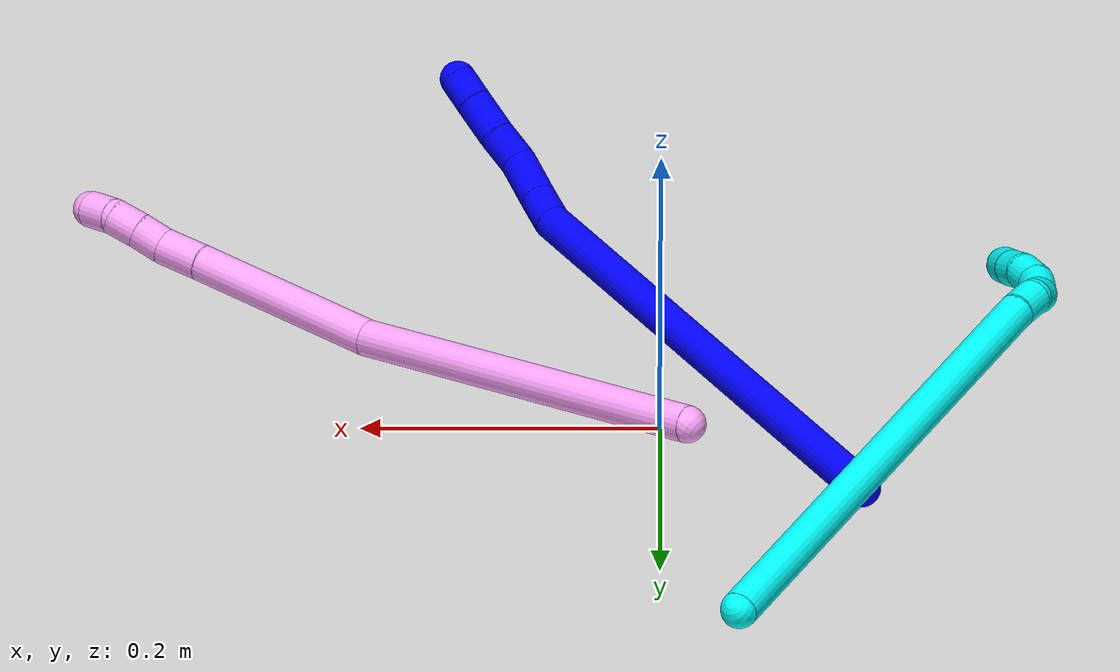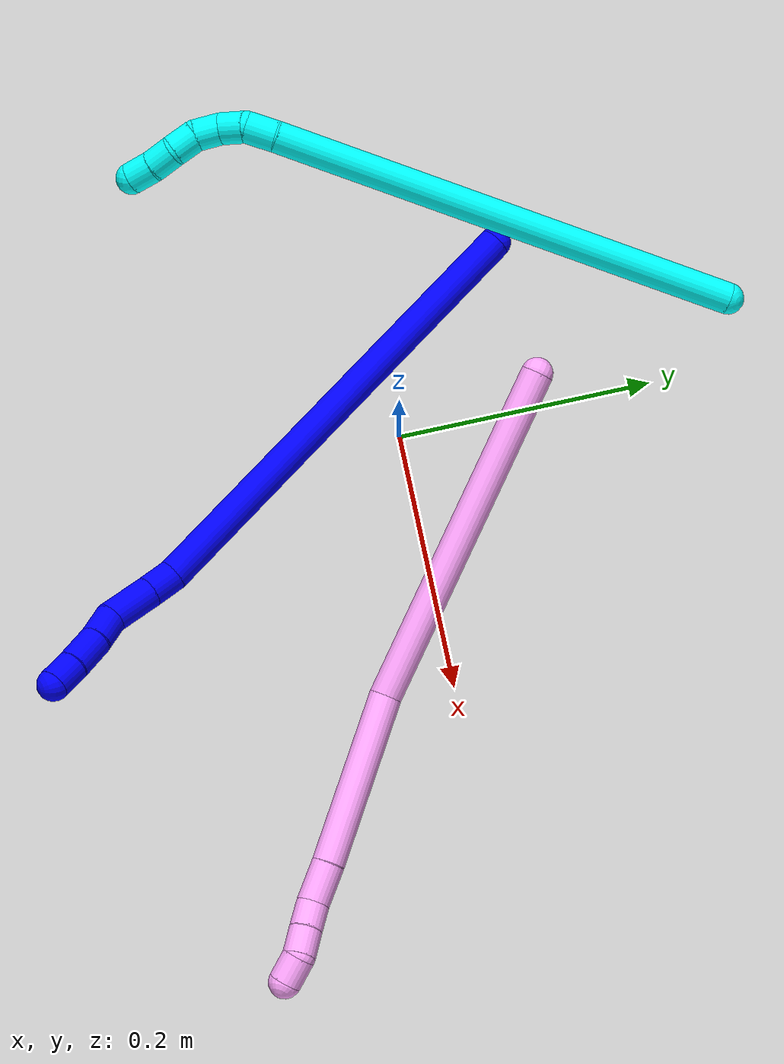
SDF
<sdf version="1.7">
 <world name="default">
  <model name="1">
   <static>0</static>
   <link name="1">
    <collision name="collision-cylinder-e_1_1_4">
     <pose>0.040502 -0.079061 0.159186 0.460972 0.224049 0.052783</pose>
     <geometry><cylinder><radius>0.0125</radius><length>0.364589</length></cylinder></geometry>
     <surface>
      <friction><ode><mu>1.16</mu><mu2>1.16</mu2><slip1>0</slip1><slip2>0</slip2></ode></friction>
      <contact><ode><kp>1e+06</kp><kd>1</kd><max_vel>0</max_vel><min_depth>0.001</min_depth></ode></contact>
     </surface>
    </collision>
    <visual name="visual-cylinder-e_1_1_4">
     <pose>0.040502 -0.079061 0.159186 0.460972 0.224049 0.052783</pose>
     <geometry><cylinder><radius>0.0125</radius><length>0.364589</length></cylinder></geometry>
     <material><ambient>0 0 1 1</ambient></material>
    </visual>
    <collision name="collision-cylinder-e_2_4_5">
     <pose>0.083281 -0.160276 0.329513 0.190978 0.198021 0.019028</pose>
     <geometry><cylinder><radius>0.0125</radius><length>0.023149</length></cylinder></geometry>
     <surface>
      <friction><ode><mu>1.16</mu><mu2>1.16</mu2><slip1>0</slip1><slip2>0</slip2></ode></friction>
      <contact><ode><kp>1e+06</kp><kd>1</kd><max_vel>0</max_vel><min_depth>0.001</min_depth></ode></contact>
     </surface>
    </collision>
    <visual name="visual-cylinder-e_2_4_5">
     <pose>0.083281 -0.160276 0.329513 0.190978 0.198021 0.019028</pose>
     <geometry><cylinder><radius>0.0125</radius><length>0.023149</length></cylinder></geometry>
     <material><ambient>0 0 1 1</ambient></material>
    </visual>
    <collision name="collision-cylinder-e_3_5_6">
     <pose>0.088976 -0.165544 0.358415 0.173533 0.187343 0.016344</pose>
     <geometry><cylinder><radius>0.0125</radius><length>0.036703</length></cylinder></geometry>
     <surface>
      <friction><ode><mu>1.16</mu><mu2>1.16</mu2><slip1>0</slip1><slip2>0</slip2></ode></friction>
      <contact><ode><kp>1e+06</kp><kd>1</kd><max_vel>0</max_vel><min_depth>0.001</min_depth></ode></contact>
     </surface>
    </collision>
    <visual name="visual-cylinder-e_3_5_6">
     <pose>0.088976 -0.165544 0.358415 0.173533 0.187343 0.016344</pose>
     <geometry><cylinder><radius>0.0125</radius><length>0.036703</length></cylinder></geometry>
     <material><ambient>0 0 1 1</ambient></material>
    </visual>
    <collision name="collision-cylinder-e_4_6_7">
     <pose>0.099693 -0.169409 0.386214 0.07474 0.627311 0.024253</pose>
     <geometry><cylinder><radius>0.0125</radius><length>0.024872</length></cylinder></geometry>
     <surface>
      <friction><ode><mu>1.16</mu><mu2>1.16</mu2><slip1>0</slip1><slip2>0</slip2></ode></friction>
      <contact><ode><kp>1e+06</kp><kd>1</kd><max_vel>0</max_vel><min_depth>0.001</min_depth></ode></contact>
     </surface>
    </collision>
    <visual name="visual-cylinder-e_4_6_7">
     <pose>0.099693 -0.169409 0.386214 0.07474 0.627311 0.024253</pose>
     <geometry><cylinder><radius>0.0125</radius><length>0.024872</length></cylinder></geometry>
     <material><ambient>0 0 1 1</ambient></material>
    </visual>
    <collision name="collision-cylinder-e_5_7_8">
     <pose>0.113809 -0.171223 0.408728 0.085017 0.498605 0.021657</pose>
     <geometry><cylinder><radius>0.0125</radius><length>0.028508</length></cylinder></geometry>
     <surface>
      <friction><ode><mu>1.16</mu><mu2>1.16</mu2><slip1>0</slip1><slip2>0</slip2></ode></friction>
      <contact><ode><kp>1e+06</kp><kd>1</kd><max_vel>0</max_vel><min_depth>0.001</min_depth></ode></contact>
     </surface>
    </collision>
    <visual name="visual-cylinder-e_5_7_8">
     <pose>0.113809 -0.171223 0.408728 0.085017 0.498605 0.021657</pose>
     <geometry><cylinder><radius>0.0125</radius><length>0.028508</length></cylinder></geometry>
     <material><ambient>0 0 1 1</ambient></material>
    </visual>
    <collision name="collision-cylinder-e_6_8_2">
     <pose>0.125166 -0.173503 0.431246 0.120536 0.421769 0.025833</pose>
     <geometry><cylinder><radius>0.0125</radius><length>0.02218</length></cylinder></geometry>
     <surface>
      <friction><ode><mu>1.16</mu><mu2>1.16</mu2><slip1>0</slip1><slip2>0</slip2></ode></friction>
      <contact><ode><kp>1e+06</kp><kd>1</kd><max_vel>0</max_vel><min_depth>0.001</min_depth></ode></contact>
     </surface>
    </collision>
    <visual name="visual-cylinder-e_6_8_2">
     <pose>0.125166 -0.173503 0.431246 0.120536 0.421769 0.025833</pose>
     <geometry><cylinder><radius>0.0125</radius><length>0.02218</length></cylinder></geometry>
     <material><ambient>0 0 1 1</ambient></material>
    </visual>
    <collision name="collision-sphere-2">
     <pose>0.129706 -0.17472 0.441291 0 -0 0</pose>
     <geometry><sphere><radius>0.0125</radius></sphere></geometry>
     <surface>
      <friction><ode><mu>1.16</mu><mu2>1.16</mu2><slip1>0</slip1><slip2>0</slip2></ode></friction>
      <contact><ode><kp>1e+06</kp><kd>1</kd><max_vel>0</max_vel><min_depth>0.001</min_depth></ode></contact>
     </surface>
    </collision>
    <visual name="visual-sphere-2">
     <pose>0.129706 -0.17472 0.441291 0 -0 0</pose>
     <geometry><sphere><radius>0.0125</radius></sphere></geometry>
     <material><ambient>0 0 1 1</ambient></material>
    </visual>
    <collision name="collision-sphere-4">
     <pose>0.081004 -0.158122 0.318372 0 -0 0</pose>
     <geometry><sphere><radius>0.0125</radius></sphere></geometry>
     <surface>
      <friction><ode><mu>1.16</mu><mu2>1.16</mu2><slip1>0</slip1><slip2>0</slip2></ode></friction>
      <contact><ode><kp>1e+06</kp><kd>1</kd><max_vel>0</max_vel><min_depth>0.001</min_depth></ode></contact>
     </surface>
    </collision>
    <visual name="visual-sphere-4">
     <pose>0.081004 -0.158122 0.318372 0 -0 0</pose>
     <geometry><sphere><radius>0.0125</radius></sphere></geometry>
     <material><ambient>0 0 1 1</ambient></material>
    </visual>
    <collision name="collision-sphere-1">
     <geometry><sphere><radius>0.0125</radius></sphere></geometry>
     <surface>
      <friction><ode><mu>1.16</mu><mu2>1.16</mu2><slip1>0</slip1><slip2>0</slip2></ode></friction>
      <contact><ode><kp>1e+06</kp><kd>1</kd><max_vel>0</max_vel><min_depth>0.001</min_depth></ode></contact>
     </surface>
    </collision>
    <visual name="visual-sphere-1">
     <geometry><sphere><radius>0.0125</radius></sphere></geometry>
     <material><ambient>0 0 1 1</ambient></material>
    </visual>
    <collision name="collision-sphere-8">
     <pose>0.120626 -0.172286 0.421202 0 -0 0</pose>
     <geometry><sphere><radius>0.0125</radius></sphere></geometry>
     <surface>
      <friction><ode><mu>1.16</mu><mu2>1.16</mu2><slip1>0</slip1><slip2>0</slip2></ode></friction>
      <contact><ode><kp>1e+06</kp><kd>1</kd><max_vel>0</max_vel><min_depth>0.001</min_depth></ode></contact>
     </surface>
    </collision>
    <visual name="visual-sphere-8">
     <pose>0.120626 -0.172286 0.421202 0 -0 0</pose>
     <geometry><sphere><radius>0.0125</radius></sphere></geometry>
     <material><ambient>0 0 1 1</ambient></material>
    </visual>
    <collision name="collision-sphere-5">
     <pose>0.085558 -0.16243 0.340655 0 -0 0</pose>
     <geometry><sphere><radius>0.0125</radius></sphere></geometry>
     <surface>
      <friction><ode><mu>1.16</mu><mu2>1.16</mu2><slip1>0</slip1><slip2>0</slip2></ode></friction>
      <contact><ode><kp>1e+06</kp><kd>1</kd><max_vel>0</max_vel><min_depth>0.001</min_depth></ode></contact>
     </surface>
    </collision>
    <visual name="visual-sphere-5">
     <pose>0.085558 -0.16243 0.340655 0 -0 0</pose>
     <geometry><sphere><radius>0.0125</radius></sphere></geometry>
     <material><ambient>0 0 1 1</ambient></material>
    </visual>
    <collision name="collision-sphere-6">
     <pose>0.092394 -0.168657 0.376174 0 -0 0</pose>
     <geometry><sphere><radius>0.0125</radius></sphere></geometry>
     <surface>
      <friction><ode><mu>1.16</mu><mu2>1.16</mu2><slip1>0</slip1><slip2>0</slip2></ode></friction>
      <contact><ode><kp>1e+06</kp><kd>1</kd><max_vel>0</max_vel><min_depth>0.001</min_depth></ode></contact>
     </surface>
    </collision>
    <visual name="visual-sphere-6">
     <pose>0.092394 -0.168657 0.376174 0 -0 0</pose>
     <geometry><sphere><radius>0.0125</radius></sphere></geometry>
     <material><ambient>0 0 1 1</ambient></material>
    </visual>
    <collision name="collision-sphere-7">
     <pose>0.106993 -0.17016 0.396254 0 -0 0</pose>
     <geometry><sphere><radius>0.0125</radius></sphere></geometry>
     <surface>
      <friction><ode><mu>1.16</mu><mu2>1.16</mu2><slip1>0</slip1><slip2>0</slip2></ode></friction>
      <contact><ode><kp>1e+06</kp><kd>1</kd><max_vel>0</max_vel><min_depth>0.001</min_depth></ode></contact>
     </surface>
    </collision>
    <visual name="visual-sphere-7">
     <pose>0.106993 -0.17016 0.396254 0 -0 0</pose>
     <geometry><sphere><radius>0.0125</radius></sphere></geometry>
     <material><ambient>0 0 1 1</ambient></material>
    </visual>
    <inertial>
     <pose>0.056921 -0.103108 0.219286 0 -0 0</pose>
     <mass>0.5</mass>
     <inertia>
      <ixx>0.004178</ixx>
      <ixy>0</ixy>
      <ixz>0</ixz>
      <iyy>0.003855</iyy>
      <iyz>0</iyz>
      <izz>0.000889</izz>
     </inertia>
    </inertial>
   </link>
   <pose>-0.132441 0.105231 0.011491 1.08247 -0.546247 0.43082</pose>
  </model>
  <model name="3">
   <static>0</static>
   <link name="3">
    <collision name="collision-cylinder-e_1_1_4">
     <pose>-0.008196 -0.14424 0.118424 0.88337 -0.043887 -0.020754</pose>
     <geometry><cylinder><radius>0.0125</radius><length>0.373613</length></cylinder></geometry>
     <surface>
      <friction><ode><mu>1.16</mu><mu2>1.16</mu2><slip1>0</slip1><slip2>0</slip2></ode></friction>
      <contact><ode><kp>1e+06</kp><kd>1</kd><max_vel>0</max_vel><min_depth>0.001</min_depth></ode></contact>
     </surface>
    </collision>
    <visual name="visual-cylinder-e_1_1_4">
     <pose>-0.008196 -0.14424 0.118424 0.88337 -0.043887 -0.020754</pose>
     <geometry><cylinder><radius>0.0125</radius><length>0.373613</length></cylinder></geometry>
     <material><ambient>0.003922 1 0.996078 1</ambient></material>
    </visual>
    <collision name="collision-cylinder-e_2_4_5">
     <pose>-0.017089 -0.296597 0.245553 0.750422 -0.058507 -0.02305</pose>
     <geometry><cylinder><radius>0.0125</radius><length>0.023844</length></cylinder></geometry>
     <surface>
      <friction><ode><mu>1.16</mu><mu2>1.16</mu2><slip1>0</slip1><slip2>0</slip2></ode></friction>
      <contact><ode><kp>1e+06</kp><kd>1</kd><max_vel>0</max_vel><min_depth>0.001</min_depth></ode></contact>
     </surface>
    </collision>
    <visual name="visual-cylinder-e_2_4_5">
     <pose>-0.017089 -0.296597 0.245553 0.750422 -0.058507 -0.02305</pose>
     <geometry><cylinder><radius>0.0125</radius><length>0.023844</length></cylinder></geometry>
     <material><ambient>0.003922 1 0.996078 1</ambient></material>
    </visual>
    <collision name="collision-cylinder-e_3_5_6">
     <pose>-0.021494 -0.308283 0.263592 0.365245 -0.35533 -0.066297</pose>
     <geometry><cylinder><radius>0.0125</radius><length>0.021318</length></cylinder></geometry>
     <surface>
      <friction><ode><mu>1.16</mu><mu2>1.16</mu2><slip1>0</slip1><slip2>0</slip2></ode></friction>
      <contact><ode><kp>1e+06</kp><kd>1</kd><max_vel>0</max_vel><min_depth>0.001</min_depth></ode></contact>
     </surface>
    </collision>
    <visual name="visual-cylinder-e_3_5_6">
     <pose>-0.021494 -0.308283 0.263592 0.365245 -0.35533 -0.066297</pose>
     <geometry><cylinder><radius>0.0125</radius><length>0.021318</length></cylinder></geometry>
     <material><ambient>0.003922 1 0.996078 1</ambient></material>
    </visual>
    <collision name="collision-cylinder-e_4_6_7">
     <pose>-0.031383 -0.317635 0.278947 0.765202 -0.637286 -0.263968</pose>
     <geometry><cylinder><radius>0.0125</radius><length>0.020775</length></cylinder></geometry>
     <surface>
      <friction><ode><mu>1.16</mu><mu2>1.16</mu2><slip1>0</slip1><slip2>0</slip2></ode></friction>
      <contact><ode><kp>1e+06</kp><kd>1</kd><max_vel>0</max_vel><min_depth>0.001</min_depth></ode></contact>
     </surface>
    </collision>
    <visual name="visual-cylinder-e_4_6_7">
     <pose>-0.031383 -0.317635 0.278947 0.765202 -0.637286 -0.263968</pose>
     <geometry><cylinder><radius>0.0125</radius><length>0.020775</length></cylinder></geometry>
     <material><ambient>0.003922 1 0.996078 1</ambient></material>
    </visual>
    <collision name="collision-cylinder-e_5_7_8">
     <pose>-0.046064 -0.327265 0.288944 0.768923 -0.993874 -0.432003</pose>
     <geometry><cylinder><radius>0.0125</radius><length>0.020284</length></cylinder></geometry>
     <surface>
      <friction><ode><mu>1.16</mu><mu2>1.16</mu2><slip1>0</slip1><slip2>0</slip2></ode></friction>
      <contact><ode><kp>1e+06</kp><kd>1</kd><max_vel>0</max_vel><min_depth>0.001</min_depth></ode></contact>
     </surface>
    </collision>
    <visual name="visual-cylinder-e_5_7_8">
     <pose>-0.046064 -0.327265 0.288944 0.768923 -0.993874 -0.432003</pose>
     <geometry><cylinder><radius>0.0125</radius><length>0.020284</length></cylinder></geometry>
     <material><ambient>0.003922 1 0.996078 1</ambient></material>
    </visual>
    <collision name="collision-cylinder-e_6_8_9">
     <pose>-0.062576 -0.332916 0.29876 0.299678 -0.918974 -0.149127</pose>
     <geometry><cylinder><radius>0.0125</radius><length>0.020154</length></cylinder></geometry>
     <surface>
      <friction><ode><mu>1.16</mu><mu2>1.16</mu2><slip1>0</slip1><slip2>0</slip2></ode></friction>
      <contact><ode><kp>1e+06</kp><kd>1</kd><max_vel>0</max_vel><min_depth>0.001</min_depth></ode></contact>
     </surface>
    </collision>
    <visual name="visual-cylinder-e_6_8_9">
     <pose>-0.062576 -0.332916 0.29876 0.299678 -0.918974 -0.149127</pose>
     <geometry><cylinder><radius>0.0125</radius><length>0.020154</length></cylinder></geometry>
     <material><ambient>0.003922 1 0.996078 1</ambient></material>
    </visual>
    <collision name="collision-cylinder-e_7_9_2">
     <pose>-0.077722 -0.337011 0.311231 0.33268 -0.793963 -0.140542</pose>
     <geometry><cylinder><radius>0.0125</radius><length>0.020012</length></cylinder></geometry>
     <surface>
      <friction><ode><mu>1.16</mu><mu2>1.16</mu2><slip1>0</slip1><slip2>0</slip2></ode></friction>
      <contact><ode><kp>1e+06</kp><kd>1</kd><max_vel>0</max_vel><min_depth>0.001</min_depth></ode></contact>
     </surface>
    </collision>
    <visual name="visual-cylinder-e_7_9_2">
     <pose>-0.077722 -0.337011 0.311231 0.33268 -0.793963 -0.140542</pose>
     <geometry><cylinder><radius>0.0125</radius><length>0.020012</length></cylinder></geometry>
     <material><ambient>0.003922 1 0.996078 1</ambient></material>
    </visual>
    <collision name="collision-sphere-2">
     <pose>-0.084858 -0.339302 0.31786 0 -0 0</pose>
     <geometry><sphere><radius>0.0125</radius></sphere></geometry>
     <surface>
      <friction><ode><mu>1.16</mu><mu2>1.16</mu2><slip1>0</slip1><slip2>0</slip2></ode></friction>
      <contact><ode><kp>1e+06</kp><kd>1</kd><max_vel>0</max_vel><min_depth>0.001</min_depth></ode></contact>
     </surface>
    </collision>
    <visual name="visual-sphere-2">
     <pose>-0.084858 -0.339302 0.31786 0 -0 0</pose>
     <geometry><sphere><radius>0.0125</radius></sphere></geometry>
     <material><ambient>0.003922 1 0.996078 1</ambient></material>
    </visual>
    <collision name="collision-sphere-9">
     <pose>-0.070587 -0.334721 0.304601 0 -0 0</pose>
     <geometry><sphere><radius>0.0125</radius></sphere></geometry>
     <surface>
      <friction><ode><mu>1.16</mu><mu2>1.16</mu2><slip1>0</slip1><slip2>0</slip2></ode></friction>
      <contact><ode><kp>1e+06</kp><kd>1</kd><max_vel>0</max_vel><min_depth>0.001</min_depth></ode></contact>
     </surface>
    </collision>
    <visual name="visual-sphere-9">
     <pose>-0.070587 -0.334721 0.304601 0 -0 0</pose>
     <geometry><sphere><radius>0.0125</radius></sphere></geometry>
     <material><ambient>0.003922 1 0.996078 1</ambient></material>
    </visual>
    <collision name="collision-sphere-4">
     <pose>-0.016392 -0.288481 0.236848 0 -0 0</pose>
     <geometry><sphere><radius>0.0125</radius></sphere></geometry>
     <surface>
      <friction><ode><mu>1.16</mu><mu2>1.16</mu2><slip1>0</slip1><slip2>0</slip2></ode></friction>
      <contact><ode><kp>1e+06</kp><kd>1</kd><max_vel>0</max_vel><min_depth>0.001</min_depth></ode></contact>
     </surface>
    </collision>
    <visual name="visual-sphere-4">
     <pose>-0.016392 -0.288481 0.236848 0 -0 0</pose>
     <geometry><sphere><radius>0.0125</radius></sphere></geometry>
     <material><ambient>0.003922 1 0.996078 1</ambient></material>
    </visual>
    <collision name="collision-sphere-1">
     <geometry><sphere><radius>0.0125</radius></sphere></geometry>
     <surface>
      <friction><ode><mu>1.16</mu><mu2>1.16</mu2><slip1>0</slip1><slip2>0</slip2></ode></friction>
      <contact><ode><kp>1e+06</kp><kd>1</kd><max_vel>0</max_vel><min_depth>0.001</min_depth></ode></contact>
     </surface>
    </collision>
    <visual name="visual-sphere-1">
     <geometry><sphere><radius>0.0125</radius></sphere></geometry>
     <material><ambient>0.003922 1 0.996078 1</ambient></material>
    </visual>
    <collision name="collision-sphere-8">
     <pose>-0.054565 -0.331111 0.29292 0 -0 0</pose>
     <geometry><sphere><radius>0.0125</radius></sphere></geometry>
     <surface>
      <friction><ode><mu>1.16</mu><mu2>1.16</mu2><slip1>0</slip1><slip2>0</slip2></ode></friction>
      <contact><ode><kp>1e+06</kp><kd>1</kd><max_vel>0</max_vel><min_depth>0.001</min_depth></ode></contact>
     </surface>
    </collision>
    <visual name="visual-sphere-8">
     <pose>-0.054565 -0.331111 0.29292 0 -0 0</pose>
     <geometry><sphere><radius>0.0125</radius></sphere></geometry>
     <material><ambient>0.003922 1 0.996078 1</ambient></material>
    </visual>
    <collision name="collision-sphere-5">
     <pose>-0.017786 -0.304713 0.254258 0 -0 0</pose>
     <geometry><sphere><radius>0.0125</radius></sphere></geometry>
     <surface>
      <friction><ode><mu>1.16</mu><mu2>1.16</mu2><slip1>0</slip1><slip2>0</slip2></ode></friction>
      <contact><ode><kp>1e+06</kp><kd>1</kd><max_vel>0</max_vel><min_depth>0.001</min_depth></ode></contact>
     </surface>
    </collision>
    <visual name="visual-sphere-5">
     <pose>-0.017786 -0.304713 0.254258 0 -0 0</pose>
     <geometry><sphere><radius>0.0125</radius></sphere></geometry>
     <material><ambient>0.003922 1 0.996078 1</ambient></material>
    </visual>
    <collision name="collision-sphere-6">
     <pose>-0.025202 -0.311852 0.272926 0 -0 0</pose>
     <geometry><sphere><radius>0.0125</radius></sphere></geometry>
     <surface>
      <friction><ode><mu>1.16</mu><mu2>1.16</mu2><slip1>0</slip1><slip2>0</slip2></ode></friction>
      <contact><ode><kp>1e+06</kp><kd>1</kd><max_vel>0</max_vel><min_depth>0.001</min_depth></ode></contact>
     </surface>
    </collision>
    <visual name="visual-sphere-6">
     <pose>-0.025202 -0.311852 0.272926 0 -0 0</pose>
     <geometry><sphere><radius>0.0125</radius></sphere></geometry>
     <material><ambient>0.003922 1 0.996078 1</ambient></material>
    </visual>
    <collision name="collision-sphere-7">
     <pose>-0.037564 -0.323418 0.284969 0 -0 0</pose>
     <geometry><sphere><radius>0.0125</radius></sphere></geometry>
     <surface>
      <friction><ode><mu>1.16</mu><mu2>1.16</mu2><slip1>0</slip1><slip2>0</slip2></ode></friction>
      <contact><ode><kp>1e+06</kp><kd>1</kd><max_vel>0</max_vel><min_depth>0.001</min_depth></ode></contact>
     </surface>
    </collision>
    <visual name="visual-sphere-7">
     <pose>-0.037564 -0.323418 0.284969 0 -0 0</pose>
     <geometry><sphere><radius>0.0125</radius></sphere></geometry>
     <material><ambient>0.003922 1 0.996078 1</ambient></material>
    </visual>
    <inertial>
     <pose>-0.016661 -0.18845 0.159249 0 -0 0</pose>
     <mass>0.5</mass>
     <inertia>
      <ixx>0.004265</ixx>
      <ixy>0</ixy>
      <ixz>0</ixz>
      <iyy>0.00266</iyy>
      <iyz>0</iyz>
      <izz>0.003592</izz>
     </inertia>
    </inertial>
   </link>
   <pose>-0.050656 0.273549 0.011493 -2.29991 -0.087941 2.5526</pose>
  </model>
  <model name="4">
   <static>0</static>
   <link name="4">
    <collision name="collision-cylinder-e_1_1_4">
     <pose>0.052949 -0.043298 0.116992 0.354461 0.401401 0.072844</pose>
     <geometry><cylinder><radius>0.0125</radius><length>0.271039</length></cylinder></geometry>
     <surface>
      <friction><ode><mu>1.16</mu><mu2>1.16</mu2><slip1>0</slip1><slip2>0</slip2></ode></friction>
      <contact><ode><kp>1e+06</kp><kd>1</kd><max_vel>0</max_vel><min_depth>0.001</min_depth></ode></contact>
     </surface>
    </collision>
    <visual name="visual-cylinder-e_1_1_4">
     <pose>0.052949 -0.043298 0.116992 0.354461 0.401401 0.072844</pose>
     <geometry><cylinder><radius>0.0125</radius><length>0.271039</length></cylinder></geometry>
     <material><ambient>1 0.65098 0.996078 1</ambient></material>
    </visual>
    <collision name="collision-cylinder-e_2_4_5">
     <pose>0.1238 -0.093603 0.29834 0.108462 0.269814 0.014736</pose>
     <geometry><cylinder><radius>0.0125</radius><length>0.134331</length></cylinder></geometry>
     <surface>
      <friction><ode><mu>1.16</mu><mu2>1.16</mu2><slip1>0</slip1><slip2>0</slip2></ode></friction>
      <contact><ode><kp>1e+06</kp><kd>1</kd><max_vel>0</max_vel><min_depth>0.001</min_depth></ode></contact>
     </surface>
    </collision>
    <visual name="visual-cylinder-e_2_4_5">
     <pose>0.1238 -0.093603 0.29834 0.108462 0.269814 0.014736</pose>
     <geometry><cylinder><radius>0.0125</radius><length>0.134331</length></cylinder></geometry>
     <material><ambient>1 0.65098 0.996078 1</ambient></material>
    </visual>
    <collision name="collision-cylinder-e_3_5_6">
     <pose>0.146129 -0.103137 0.37773 0.166454 0.282509 0.023724</pose>
     <geometry><cylinder><radius>0.0125</radius><length>0.031749</length></cylinder></geometry>
     <surface>
      <friction><ode><mu>1.16</mu><mu2>1.16</mu2><slip1>0</slip1><slip2>0</slip2></ode></friction>
      <contact><ode><kp>1e+06</kp><kd>1</kd><max_vel>0</max_vel><min_depth>0.001</min_depth></ode></contact>
     </surface>
    </collision>
    <visual name="visual-cylinder-e_3_5_6">
     <pose>0.146129 -0.103137 0.37773 0.166454 0.282509 0.023724</pose>
     <geometry><cylinder><radius>0.0125</radius><length>0.031749</length></cylinder></geometry>
     <material><ambient>1 0.65098 0.996078 1</ambient></material>
    </visual>
    <collision name="collision-cylinder-e_4_6_7">
     <pose>0.151933 -0.105126 0.402956 -0.052606 0.134299 -0.003539</pose>
     <geometry><cylinder><radius>0.0125</radius><length>0.020597</length></cylinder></geometry>
     <surface>
      <friction><ode><mu>1.16</mu><mu2>1.16</mu2><slip1>0</slip1><slip2>0</slip2></ode></friction>
      <contact><ode><kp>1e+06</kp><kd>1</kd><max_vel>0</max_vel><min_depth>0.001</min_depth></ode></contact>
     </surface>
    </collision>
    <visual name="visual-cylinder-e_4_6_7">
     <pose>0.151933 -0.105126 0.402956 -0.052606 0.134299 -0.003539</pose>
     <geometry><cylinder><radius>0.0125</radius><length>0.020597</length></cylinder></geometry>
     <material><ambient>1 0.65098 0.996078 1</ambient></material>
    </visual>
    <collision name="collision-cylinder-e_5_7_8">
     <pose>0.155215 -0.104159 0.423426 -0.041836 0.182943 -0.003838</pose>
     <geometry><cylinder><radius>0.0125</radius><length>0.020925</length></cylinder></geometry>
     <surface>
      <friction><ode><mu>1.16</mu><mu2>1.16</mu2><slip1>0</slip1><slip2>0</slip2></ode></friction>
      <contact><ode><kp>1e+06</kp><kd>1</kd><max_vel>0</max_vel><min_depth>0.001</min_depth></ode></contact>
     </surface>
    </collision>
    <visual name="visual-cylinder-e_5_7_8">
     <pose>0.155215 -0.104159 0.423426 -0.041836 0.182943 -0.003838</pose>
     <geometry><cylinder><radius>0.0125</radius><length>0.020925</length></cylinder></geometry>
     <material><ambient>1 0.65098 0.996078 1</ambient></material>
    </visual>
    <collision name="collision-cylinder-e_6_8_2">
     <pose>0.160821 -0.107605 0.442942 0.397242 0.354056 0.071985</pose>
     <geometry><cylinder><radius>0.0125</radius><length>0.02136</length></cylinder></geometry>
     <surface>
      <friction><ode><mu>1.16</mu><mu2>1.16</mu2><slip1>0</slip1><slip2>0</slip2></ode></friction>
      <contact><ode><kp>1e+06</kp><kd>1</kd><max_vel>0</max_vel><min_depth>0.001</min_depth></ode></contact>
     </surface>
    </collision>
    <visual name="visual-cylinder-e_6_8_2">
     <pose>0.160821 -0.107605 0.442942 0.397242 0.354056 0.071985</pose>
     <geometry><cylinder><radius>0.0125</radius><length>0.02136</length></cylinder></geometry>
     <material><ambient>1 0.65098 0.996078 1</ambient></material>
    </visual>
    <collision name="collision-sphere-2">
     <pose>0.164524 -0.11148 0.45218 0 -0 0</pose>
     <geometry><sphere><radius>0.0125</radius></sphere></geometry>
     <surface>
      <friction><ode><mu>1.16</mu><mu2>1.16</mu2><slip1>0</slip1><slip2>0</slip2></ode></friction>
      <contact><ode><kp>1e+06</kp><kd>1</kd><max_vel>0</max_vel><min_depth>0.001</min_depth></ode></contact>
     </surface>
    </collision>
    <visual name="visual-sphere-2">
     <pose>0.164524 -0.11148 0.45218 0 -0 0</pose>
     <geometry><sphere><radius>0.0125</radius></sphere></geometry>
     <material><ambient>1 0.65098 0.996078 1</ambient></material>
    </visual>
    <collision name="collision-sphere-4">
     <pose>0.105897 -0.086596 0.233985 0 -0 0</pose>
     <geometry><sphere><radius>0.0125</radius></sphere></geometry>
     <surface>
      <friction><ode><mu>1.16</mu><mu2>1.16</mu2><slip1>0</slip1><slip2>0</slip2></ode></friction>
      <contact><ode><kp>1e+06</kp><kd>1</kd><max_vel>0</max_vel><min_depth>0.001</min_depth></ode></contact>
     </surface>
    </collision>
    <visual name="visual-sphere-4">
     <pose>0.105897 -0.086596 0.233985 0 -0 0</pose>
     <geometry><sphere><radius>0.0125</radius></sphere></geometry>
     <material><ambient>1 0.65098 0.996078 1</ambient></material>
    </visual>
    <collision name="collision-sphere-1">
     <geometry><sphere><radius>0.0125</radius></sphere></geometry>
     <surface>
      <friction><ode><mu>1.16</mu><mu2>1.16</mu2><slip1>0</slip1><slip2>0</slip2></ode></friction>
      <contact><ode><kp>1e+06</kp><kd>1</kd><max_vel>0</max_vel><min_depth>0.001</min_depth></ode></contact>
     </surface>
    </collision>
    <visual name="visual-sphere-1">
     <geometry><sphere><radius>0.0125</radius></sphere></geometry>
     <material><ambient>1 0.65098 0.996078 1</ambient></material>
    </visual>
    <collision name="collision-sphere-8">
     <pose>0.157118 -0.103729 0.433705 0 -0 0</pose>
     <geometry><sphere><radius>0.0125</radius></sphere></geometry>
     <surface>
      <friction><ode><mu>1.16</mu><mu2>1.16</mu2><slip1>0</slip1><slip2>0</slip2></ode></friction>
      <contact><ode><kp>1e+06</kp><kd>1</kd><max_vel>0</max_vel><min_depth>0.001</min_depth></ode></contact>
     </surface>
    </collision>
    <visual name="visual-sphere-8">
     <pose>0.157118 -0.103729 0.433705 0 -0 0</pose>
     <geometry><sphere><radius>0.0125</radius></sphere></geometry>
     <material><ambient>1 0.65098 0.996078 1</ambient></material>
    </visual>
    <collision name="collision-sphere-5">
     <pose>0.141703 -0.100611 0.362695 0 -0 0</pose>
     <geometry><sphere><radius>0.0125</radius></sphere></geometry>
     <surface>
      <friction><ode><mu>1.16</mu><mu2>1.16</mu2><slip1>0</slip1><slip2>0</slip2></ode></friction>
      <contact><ode><kp>1e+06</kp><kd>1</kd><max_vel>0</max_vel><min_depth>0.001</min_depth></ode></contact>
     </surface>
    </collision>
    <visual name="visual-sphere-5">
     <pose>0.141703 -0.100611 0.362695 0 -0 0</pose>
     <geometry><sphere><radius>0.0125</radius></sphere></geometry>
     <material><ambient>1 0.65098 0.996078 1</ambient></material>
    </visual>
    <collision name="collision-sphere-6">
     <pose>0.150554 -0.105663 0.392764 0 -0 0</pose>
     <geometry><sphere><radius>0.0125</radius></sphere></geometry>
     <surface>
      <friction><ode><mu>1.16</mu><mu2>1.16</mu2><slip1>0</slip1><slip2>0</slip2></ode></friction>
      <contact><ode><kp>1e+06</kp><kd>1</kd><max_vel>0</max_vel><min_depth>0.001</min_depth></ode></contact>
     </surface>
    </collision>
    <visual name="visual-sphere-6">
     <pose>0.150554 -0.105663 0.392764 0 -0 0</pose>
     <geometry><sphere><radius>0.0125</radius></sphere></geometry>
     <material><ambient>1 0.65098 0.996078 1</ambient></material>
    </visual>
    <collision name="collision-sphere-7">
     <pose>0.153312 -0.10459 0.413147 0 -0 0</pose>
     <geometry><sphere><radius>0.0125</radius></sphere></geometry>
     <surface>
      <friction><ode><mu>1.16</mu><mu2>1.16</mu2><slip1>0</slip1><slip2>0</slip2></ode></friction>
      <contact><ode><kp>1e+06</kp><kd>1</kd><max_vel>0</max_vel><min_depth>0.001</min_depth></ode></contact>
     </surface>
    </collision>
    <visual name="visual-sphere-7">
     <pose>0.153312 -0.10459 0.413147 0 -0 0</pose>
     <geometry><sphere><radius>0.0125</radius></sphere></geometry>
     <material><ambient>1 0.65098 0.996078 1</ambient></material>
    </visual>
    <inertial>
     <pose>0.090866 -0.068454 0.220798 0 -0 0</pose>
     <mass>0.5</mass>
     <inertia>
      <ixx>0.001869</ixx>
      <ixy>0</ixy>
      <ixz>0</ixz>
      <iyy>0.001899</iyy>
      <iyz>0</iyz>
      <izz>-0.000118</izz>
     </inertia>
    </inertial>
   </link>
   <pose>-0.017445 0.110966 0.061059 0.83916 0.858917 0.377106</pose>
  </model>
 </world>
</sdf>
